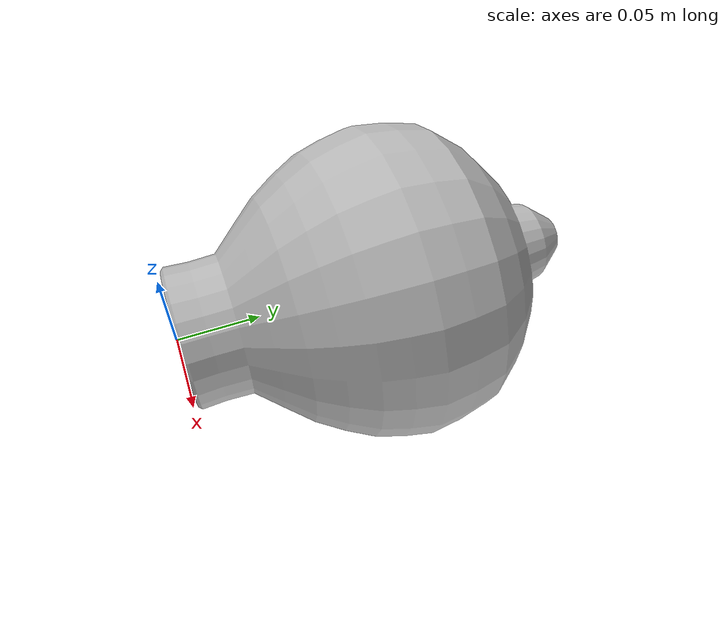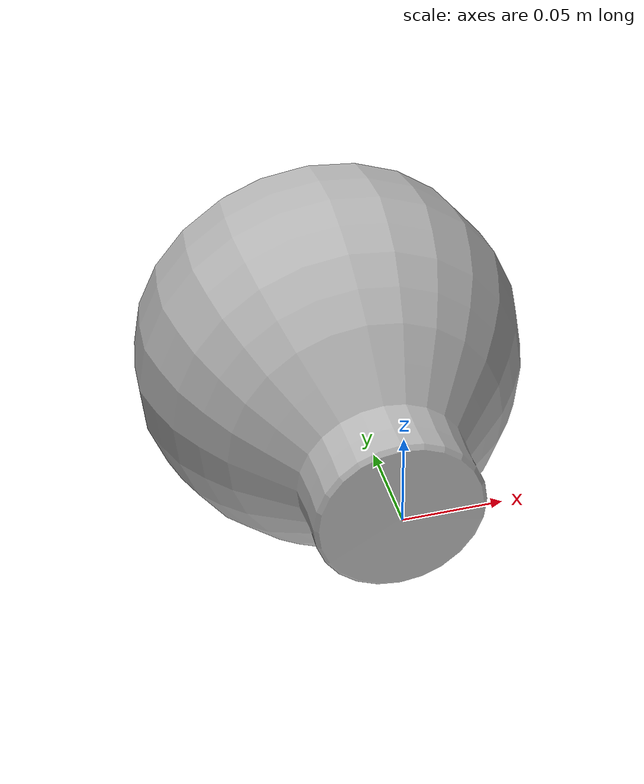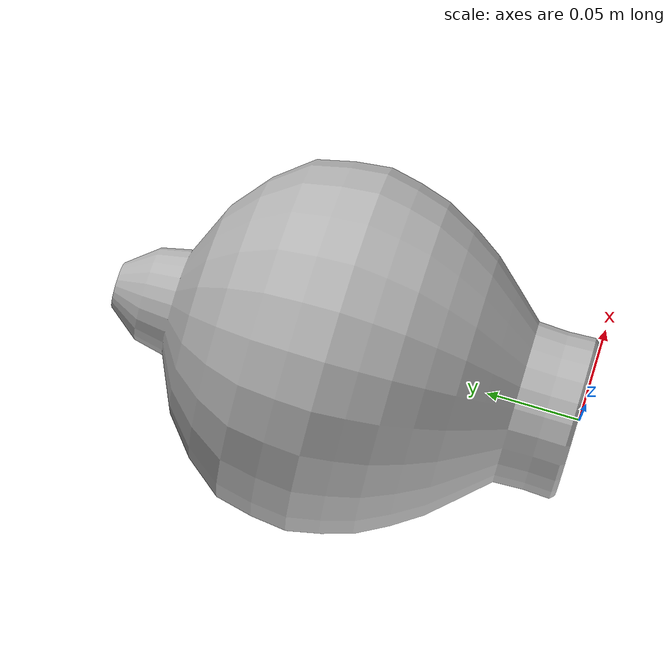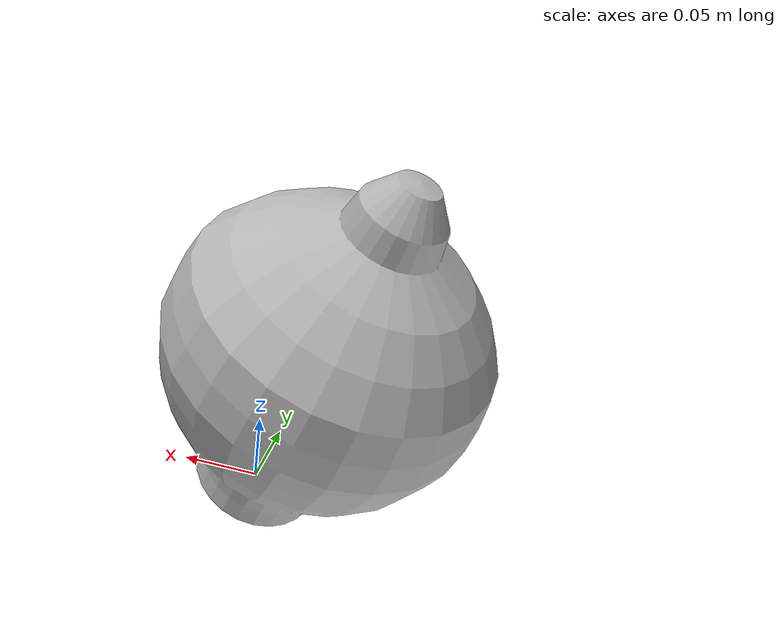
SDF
<?xml version="1.0" ?>
<sdf version="1.4">
  <model name="shelf3_vase3">
    <link name="body">
      <pose>0 0 0 0 0 0</pose>
      <inertial>
        <pose>   0.000000   0.122111  -0.000000 0 0 0</pose>
        <mass>0.5</mass>
        <inertia>
          <ixx>0.01</ixx>
          <ixy>0</ixy>
          <ixz>0</ixz>
          <iyy>0.01</iyy>
          <iyz>0</iyz>
          <izz>0.01</izz>
        </inertia>
      </inertial>
      <collision name="collision">
        <geometry>
          <mesh>
            <uri>model://bookshelf/shelf3_items/vase3/vase3.dae</uri>
          </mesh>
        </geometry>
      </collision>
      <visual name="visual">
        <geometry>
          <mesh>
            <uri>model://bookshelf/shelf3_items/vase3/vase3.dae</uri>
          </mesh>
        </geometry>
      </visual>
    </link>
  </model>
</sdf>
